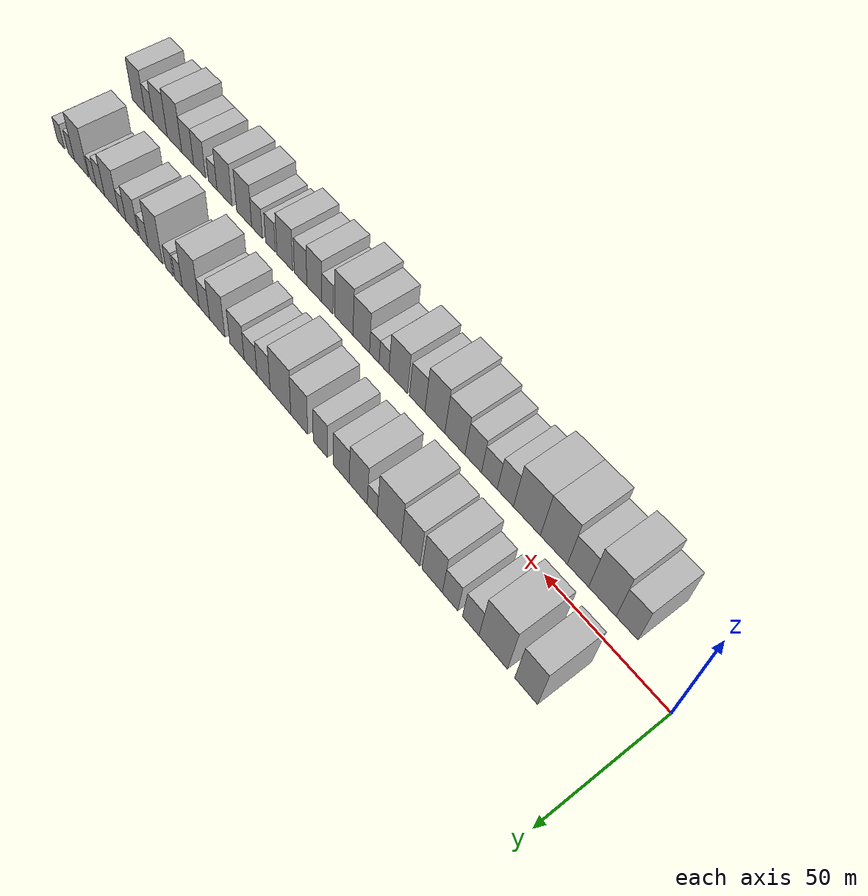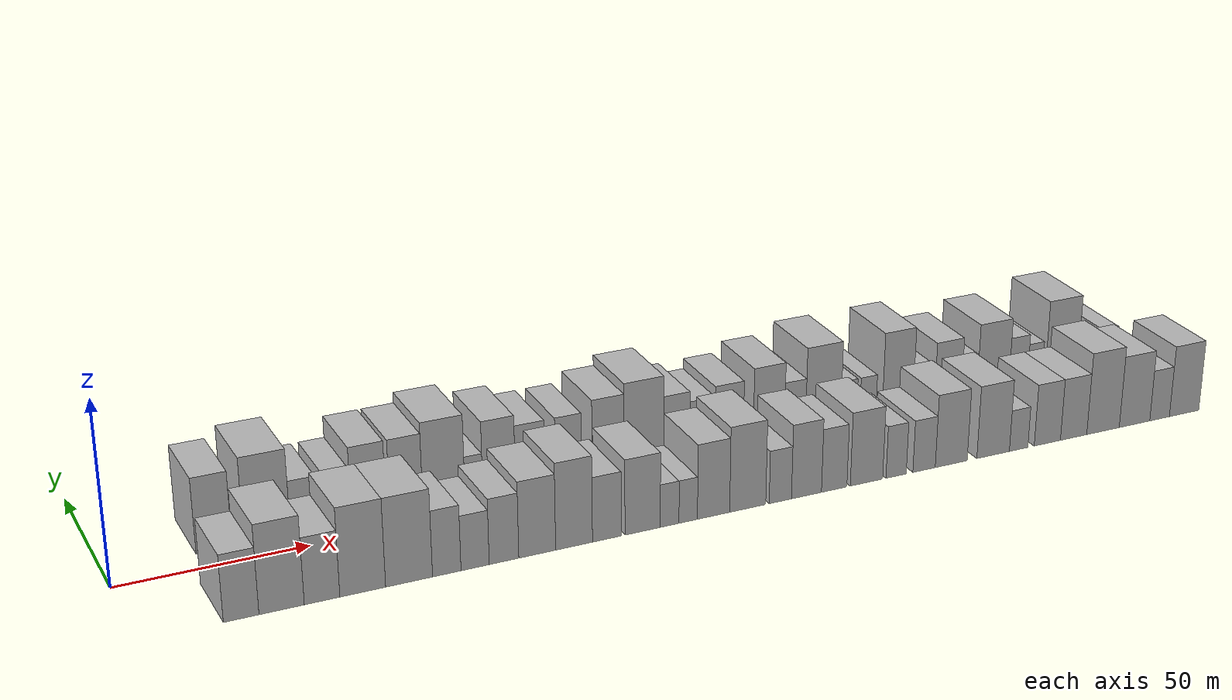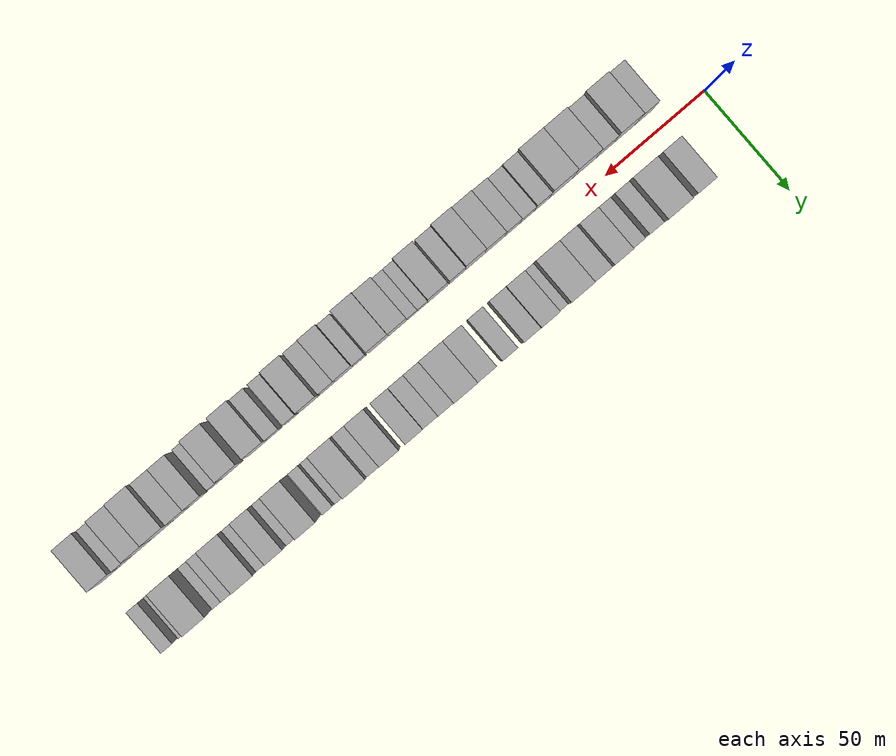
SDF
<sdf version="1.6">
 <world name="default">
  <scene>
   <sky><clouds><speed>12</speed></clouds></sky>
   <ambient>0.4 0.4 0.4 1</ambient>
   <background>0.7 0.7 0.7 1</background>
   <shadows>1</shadows>
  </scene>
  <gravity>0 0 -9.8066</gravity>
  <magnetic_field>6e-06 2.3e-05 -4.2e-05</magnetic_field>
  <physics default="0" name="default_physics" type="ode">
   <ode>
    <solver>
     <type>quick</type>
     <iters>10</iters>
     <sor>1.0</sor>
     <use_dynamic_moi_rescaling>0</use_dynamic_moi_rescaling>
    </solver>
    <constraints>
     <cfm>0</cfm>
     <erp>0.2</erp>
     <contact_max_correcting_vel>100</contact_max_correcting_vel>
     <contact_surface_layer>0.001</contact_surface_layer>
    </constraints>
   </ode>
   <max_step_size>0.004</max_step_size>
   <real_time_factor>1</real_time_factor>
   <real_time_update_rate>250</real_time_update_rate>
  </physics>
  <light name="sun" type="directional">
   <pose>0 0 10 0 0 0</pose>
   <diffuse>0.8 0.8 0.8 1</diffuse>
   <specular>0.2 0.2 0.2 1</specular>
   <attenuation>
    <range>1000</range>
    <constant>0.9</constant>
    <linear>0.01</linear>
    <quadratic>0.001</quadratic>
   </attenuation>
   <direction>-0.5 0.1 -0.9</direction>
  </light>
  <model name="building_1">
   <static>1</static>
   <pose>27.5852 17.5000 0 0.000000 0.000000 1.570796</pose>
   <link name="link">
    <pose>0 0 10.50 0 0 0</pose>
    <collision name="collision"><geometry><box><size>20.0000 9.1705 21.0000</size></box></geometry></collision>
    <visual name="visual">
     <cast_shadows>0</cast_shadows>
     <geometry><box><size>20.0000 9.1705 21.0000</size></box></geometry>
     <material>
      <script>
       <uri>model://HANNAS_wall/materials/scripts</uri>
       <uri>model://HANNAS_wall/materials/textures</uri>
       <name>vrc/HANNAS_wall</name>
      </script>
     </material>
    </visual>
   </link>
  </model>
  <model name="building_2">
   <static>1</static>
   <pose>41.1646 17.5000 0 0.000000 0.000000 1.570796</pose>
   <link name="link">
    <pose>0 0 12.00 0 0 0</pose>
    <collision name="collision"><geometry><box><size>20.0000 11.9883 24.0000</size></box></geometry></collision>
    <visual name="visual">
     <cast_shadows>0</cast_shadows>
     <geometry><box><size>20.0000 11.9883 24.0000</size></box></geometry>
     <material>
      <script>
       <uri>model://HANNAS_wall/materials/scripts</uri>
       <uri>model://HANNAS_wall/materials/textures</uri>
       <name>vrc/HANNAS_wall</name>
      </script>
     </material>
    </visual>
   </link>
  </model>
  <model name="building_3">
   <static>1</static>
   <pose>50.7169 17.5000 0 0.000000 0.000000 1.570796</pose>
   <link name="link">
    <pose>0 0 7.50 0 0 0</pose>
    <collision name="collision"><geometry><box><size>20.0000 7.1163 15.0000</size></box></geometry></collision>
    <visual name="visual">
     <cast_shadows>0</cast_shadows>
     <geometry><box><size>20.0000 7.1163 15.0000</size></box></geometry>
     <material>
      <script>
       <uri>model://HANNAS_wall/materials/scripts</uri>
       <uri>model://HANNAS_wall/materials/textures</uri>
       <name>vrc/HANNAS_wall</name>
      </script>
     </material>
    </visual>
   </link>
  </model>
  <model name="building_4">
   <static>1</static>
   <pose>59.7222 17.5000 0 0.000000 0.000000 1.570796</pose>
   <link name="link">
    <pose>0 0 7.50 0 0 0</pose>
    <collision name="collision"><geometry><box><size>20.0000 6.8942 15.0000</size></box></geometry></collision>
    <visual name="visual">
     <cast_shadows>0</cast_shadows>
     <geometry><box><size>20.0000 6.8942 15.0000</size></box></geometry>
     <material>
      <script>
       <uri>model://HANNAS_wall/materials/scripts</uri>
       <uri>model://HANNAS_wall/materials/textures</uri>
       <name>vrc/HANNAS_wall</name>
      </script>
     </material>
    </visual>
   </link>
  </model>
  <model name="building_5">
   <static>1</static>
   <pose>67.7992 17.5000 0 0.000000 0.000000 1.570796</pose>
   <link name="link">
    <pose>0 0 10.50 0 0 0</pose>
    <collision name="collision"><geometry><box><size>20.0000 9.2598 21.0000</size></box></geometry></collision>
    <visual name="visual">
     <cast_shadows>0</cast_shadows>
     <geometry><box><size>20.0000 9.2598 21.0000</size></box></geometry>
     <material>
      <script>
       <uri>model://HANNAS_wall/materials/scripts</uri>
       <uri>model://HANNAS_wall/materials/textures</uri>
       <name>vrc/HANNAS_wall</name>
      </script>
     </material>
    </visual>
   </link>
  </model>
  <model name="building_6">
   <static>1</static>
   <pose>77.8430 17.5000 0 0.000000 0.000000 1.570796</pose>
   <link name="link">
    <pose>0 0 10.50 0 0 0</pose>
    <collision name="collision"><geometry><box><size>20.0000 8.8278 21.0000</size></box></geometry></collision>
    <visual name="visual">
     <cast_shadows>0</cast_shadows>
     <geometry><box><size>20.0000 8.8278 21.0000</size></box></geometry>
     <material>
      <script>
       <uri>model://HANNAS_wall/materials/scripts</uri>
       <uri>model://HANNAS_wall/materials/textures</uri>
       <name>vrc/HANNAS_wall</name>
      </script>
     </material>
    </visual>
   </link>
  </model>
  <model name="building_7">
   <static>1</static>
   <pose>87.9977 17.5000 0 0.000000 0.000000 1.570796</pose>
   <link name="link">
    <pose>0 0 12.00 0 0 0</pose>
    <collision name="collision"><geometry><box><size>20.0000 11.4816 24.0000</size></box></geometry></collision>
    <visual name="visual">
     <cast_shadows>0</cast_shadows>
     <geometry><box><size>20.0000 11.4816 24.0000</size></box></geometry>
     <material>
      <script>
       <uri>model://HANNAS_wall/materials/scripts</uri>
       <uri>model://HANNAS_wall/materials/textures</uri>
       <name>vrc/HANNAS_wall</name>
      </script>
     </material>
    </visual>
   </link>
  </model>
  <model name="building_8">
   <static>1</static>
   <pose>96.1856 17.5000 0 0.000000 0.000000 1.570796</pose>
   <link name="link">
    <pose>0 0 6.00 0 0 0</pose>
    <collision name="collision"><geometry><box><size>20.0000 4.8943 12.0000</size></box></geometry></collision>
    <visual name="visual">
     <cast_shadows>0</cast_shadows>
     <geometry><box><size>20.0000 4.8943 12.0000</size></box></geometry>
     <material>
      <script>
       <uri>model://HANNAS_wall/materials/scripts</uri>
       <uri>model://HANNAS_wall/materials/textures</uri>
       <name>vrc/HANNAS_wall</name>
      </script>
     </material>
    </visual>
   </link>
  </model>
  <model name="building_9">
   <static>1</static>
   <pose>103.1687 17.5000 0 0.000000 0.000000 1.570796</pose>
   <link name="link">
    <pose>0 0 10.50 0 0 0</pose>
    <collision name="collision"><geometry><box><size>20.0000 9.0717 21.0000</size></box></geometry></collision>
    <visual name="visual">
     <cast_shadows>0</cast_shadows>
     <geometry><box><size>20.0000 9.0717 21.0000</size></box></geometry>
     <material>
      <script>
       <uri>model://HANNAS_wall/materials/scripts</uri>
       <uri>model://HANNAS_wall/materials/textures</uri>
       <name>vrc/HANNAS_wall</name>
      </script>
     </material>
    </visual>
   </link>
  </model>
  <model name="building_10">
   <static>1</static>
   <pose>111.8234 17.5000 0 0.000000 0.000000 1.570796</pose>
   <link name="link">
    <pose>0 0 9.00 0 0 0</pose>
    <collision name="collision"><geometry><box><size>20.0000 8.2377 18.0000</size></box></geometry></collision>
    <visual name="visual">
     <cast_shadows>0</cast_shadows>
     <geometry><box><size>20.0000 8.2377 18.0000</size></box></geometry>
     <material>
      <script>
       <uri>model://HANNAS_wall/materials/scripts</uri>
       <uri>model://HANNAS_wall/materials/textures</uri>
       <name>vrc/HANNAS_wall</name>
      </script>
     </material>
    </visual>
   </link>
  </model>
  <model name="building_11">
   <static>1</static>
   <pose>122.6822 17.5000 0 0.000000 0.000000 1.570796</pose>
   <link name="link">
    <pose>0 0 9.00 0 0 0</pose>
    <collision name="collision"><geometry><box><size>20.0000 7.4799 18.0000</size></box></geometry></collision>
    <visual name="visual">
     <cast_shadows>0</cast_shadows>
     <geometry><box><size>20.0000 7.4799 18.0000</size></box></geometry>
     <material>
      <script>
       <uri>model://HANNAS_wall/materials/scripts</uri>
       <uri>model://HANNAS_wall/materials/textures</uri>
       <name>vrc/HANNAS_wall</name>
      </script>
     </material>
    </visual>
   </link>
  </model>
  <model name="building_12">
   <static>1</static>
   <pose>134.0136 17.5000 0 0.000000 0.000000 1.570796</pose>
   <link name="link">
    <pose>0 0 10.50 0 0 0</pose>
    <collision name="collision"><geometry><box><size>20.0000 9.1830 21.0000</size></box></geometry></collision>
    <visual name="visual">
     <cast_shadows>0</cast_shadows>
     <geometry><box><size>20.0000 9.1830 21.0000</size></box></geometry>
     <material>
      <script>
       <uri>model://HANNAS_wall/materials/scripts</uri>
       <uri>model://HANNAS_wall/materials/textures</uri>
       <name>vrc/HANNAS_wall</name>
      </script>
     </material>
    </visual>
   </link>
  </model>
  <model name="building_13">
   <static>1</static>
   <pose>144.3929 17.5000 0 0.000000 0.000000 1.570796</pose>
   <link name="link">
    <pose>0 0 12.00 0 0 0</pose>
    <collision name="collision"><geometry><box><size>20.0000 11.5757 24.0000</size></box></geometry></collision>
    <visual name="visual">
     <cast_shadows>0</cast_shadows>
     <geometry><box><size>20.0000 11.5757 24.0000</size></box></geometry>
     <material>
      <script>
       <uri>model://HANNAS_wall/materials/scripts</uri>
       <uri>model://HANNAS_wall/materials/textures</uri>
       <name>vrc/HANNAS_wall</name>
      </script>
     </material>
    </visual>
   </link>
  </model>
  <model name="building_14">
   <static>1</static>
   <pose>153.9716 17.5000 0 0.000000 0.000000 1.570796</pose>
   <link name="link">
    <pose>0 0 9.00 0 0 0</pose>
    <collision name="collision"><geometry><box><size>20.0000 7.5817 18.0000</size></box></geometry></collision>
    <visual name="visual">
     <cast_shadows>0</cast_shadows>
     <geometry><box><size>20.0000 7.5817 18.0000</size></box></geometry>
     <material>
      <script>
       <uri>model://HANNAS_wall/materials/scripts</uri>
       <uri>model://HANNAS_wall/materials/textures</uri>
       <name>vrc/HANNAS_wall</name>
      </script>
     </material>
    </visual>
   </link>
  </model>
  <model name="building_15">
   <static>1</static>
   <pose>161.5057 17.5000 0 0.000000 0.000000 1.570796</pose>
   <link name="link">
    <pose>0 0 7.50 0 0 0</pose>
    <collision name="collision"><geometry><box><size>20.0000 7.4865 15.0000</size></box></geometry></collision>
    <visual name="visual">
     <cast_shadows>0</cast_shadows>
     <geometry><box><size>20.0000 7.4865 15.0000</size></box></geometry>
     <material>
      <script>
       <uri>model://HANNAS_wall/materials/scripts</uri>
       <uri>model://HANNAS_wall/materials/textures</uri>
       <name>vrc/HANNAS_wall</name>
      </script>
     </material>
    </visual>
   </link>
  </model>
  <model name="building_16">
   <static>1</static>
   <pose>169.5354 17.5000 0 0.000000 0.000000 1.570796</pose>
   <link name="link">
    <pose>0 0 9.00 0 0 0</pose>
    <collision name="collision"><geometry><box><size>20.0000 8.5730 18.0000</size></box></geometry></collision>
    <visual name="visual">
     <cast_shadows>0</cast_shadows>
     <geometry><box><size>20.0000 8.5730 18.0000</size></box></geometry>
     <material>
      <script>
       <uri>model://HANNAS_wall/materials/scripts</uri>
       <uri>model://HANNAS_wall/materials/textures</uri>
       <name>vrc/HANNAS_wall</name>
      </script>
     </material>
    </visual>
   </link>
  </model>
  <model name="building_17">
   <static>1</static>
   <pose>181.5526 17.5000 0 0.000000 0.000000 1.570796</pose>
   <link name="link">
    <pose>0 0 10.50 0 0 0</pose>
    <collision name="collision"><geometry><box><size>20.0000 9.4613 21.0000</size></box></geometry></collision>
    <visual name="visual">
     <cast_shadows>0</cast_shadows>
     <geometry><box><size>20.0000 9.4613 21.0000</size></box></geometry>
     <material>
      <script>
       <uri>model://HANNAS_wall/materials/scripts</uri>
       <uri>model://HANNAS_wall/materials/textures</uri>
       <name>vrc/HANNAS_wall</name>
      </script>
     </material>
    </visual>
   </link>
  </model>
  <model name="building_18">
   <static>1</static>
   <pose>189.5283 17.5000 0 0.000000 0.000000 1.570796</pose>
   <link name="link">
    <pose>0 0 7.50 0 0 0</pose>
    <collision name="collision"><geometry><box><size>20.0000 6.4901 15.0000</size></box></geometry></collision>
    <visual name="visual">
     <cast_shadows>0</cast_shadows>
     <geometry><box><size>20.0000 6.4901 15.0000</size></box></geometry>
     <material>
      <script>
       <uri>model://HANNAS_wall/materials/scripts</uri>
       <uri>model://HANNAS_wall/materials/textures</uri>
       <name>vrc/HANNAS_wall</name>
      </script>
     </material>
    </visual>
   </link>
  </model>
  <model name="building_19">
   <static>1</static>
   <pose>198.2223 17.5000 0 0.000000 0.000000 1.570796</pose>
   <link name="link">
    <pose>0 0 12.00 0 0 0</pose>
    <collision name="collision"><geometry><box><size>20.0000 10.8981 24.0000</size></box></geometry></collision>
    <visual name="visual">
     <cast_shadows>0</cast_shadows>
     <geometry><box><size>20.0000 10.8981 24.0000</size></box></geometry>
     <material>
      <script>
       <uri>model://HANNAS_wall/materials/scripts</uri>
       <uri>model://HANNAS_wall/materials/textures</uri>
       <name>vrc/HANNAS_wall</name>
      </script>
     </material>
    </visual>
   </link>
  </model>
  <model name="building_20">
   <static>1</static>
   <pose>206.1692 17.5000 0 0.000000 0.000000 1.570796</pose>
   <link name="link">
    <pose>0 0 6.00 0 0 0</pose>
    <collision name="collision"><geometry><box><size>20.0000 4.9956 12.0000</size></box></geometry></collision>
    <visual name="visual">
     <cast_shadows>0</cast_shadows>
     <geometry><box><size>20.0000 4.9956 12.0000</size></box></geometry>
     <material>
      <script>
       <uri>model://HANNAS_wall/materials/scripts</uri>
       <uri>model://HANNAS_wall/materials/textures</uri>
       <name>vrc/HANNAS_wall</name>
      </script>
     </material>
    </visual>
   </link>
  </model>
  <model name="building_21">
   <static>1</static>
   <pose>212.2109 17.5000 0 0.000000 0.000000 1.570796</pose>
   <link name="link">
    <pose>0 0 6.00 0 0 0</pose>
    <collision name="collision"><geometry><box><size>20.0000 5.0878 12.0000</size></box></geometry></collision>
    <visual name="visual">
     <cast_shadows>0</cast_shadows>
     <geometry><box><size>20.0000 5.0878 12.0000</size></box></geometry>
     <material>
      <script>
       <uri>model://HANNAS_wall/materials/scripts</uri>
       <uri>model://HANNAS_wall/materials/textures</uri>
       <name>vrc/HANNAS_wall</name>
      </script>
     </material>
    </visual>
   </link>
  </model>
  <model name="building_22">
   <static>1</static>
   <pose>221.6226 17.5000 0 0.000000 0.000000 1.570796</pose>
   <link name="link">
    <pose>0 0 12.00 0 0 0</pose>
    <collision name="collision"><geometry><box><size>20.0000 9.7358 24.0000</size></box></geometry></collision>
    <visual name="visual">
     <cast_shadows>0</cast_shadows>
     <geometry><box><size>20.0000 9.7358 24.0000</size></box></geometry>
     <material>
      <script>
       <uri>model://HANNAS_wall/materials/scripts</uri>
       <uri>model://HANNAS_wall/materials/textures</uri>
       <name>vrc/HANNAS_wall</name>
      </script>
     </material>
    </visual>
   </link>
  </model>
  <model name="building_23">
   <static>1</static>
   <pose>229.4698 17.5000 0 0.000000 0.000000 1.570796</pose>
   <link name="link">
    <pose>0 0 6.00 0 0 0</pose>
    <collision name="collision"><geometry><box><size>20.0000 5.9585 12.0000</size></box></geometry></collision>
    <visual name="visual">
     <cast_shadows>0</cast_shadows>
     <geometry><box><size>20.0000 5.9585 12.0000</size></box></geometry>
     <material>
      <script>
       <uri>model://HANNAS_wall/materials/scripts</uri>
       <uri>model://HANNAS_wall/materials/textures</uri>
       <name>vrc/HANNAS_wall</name>
      </script>
     </material>
    </visual>
   </link>
  </model>
  <model name="building_24">
   <static>1</static>
   <pose>237.7962 17.5000 0 0.000000 0.000000 1.570796</pose>
   <link name="link">
    <pose>0 0 9.00 0 0 0</pose>
    <collision name="collision"><geometry><box><size>20.0000 8.6944 18.0000</size></box></geometry></collision>
    <visual name="visual">
     <cast_shadows>0</cast_shadows>
     <geometry><box><size>20.0000 8.6944 18.0000</size></box></geometry>
     <material>
      <script>
       <uri>model://HANNAS_wall/materials/scripts</uri>
       <uri>model://HANNAS_wall/materials/textures</uri>
       <name>vrc/HANNAS_wall</name>
      </script>
     </material>
    </visual>
   </link>
  </model>
  <model name="building_25">
   <static>1</static>
   <pose>244.6974 17.5000 0 0.000000 0.000000 1.570796</pose>
   <link name="link">
    <pose>0 0 6.00 0 0 0</pose>
    <collision name="collision"><geometry><box><size>20.0000 5.1079 12.0000</size></box></geometry></collision>
    <visual name="visual">
     <cast_shadows>0</cast_shadows>
     <geometry><box><size>20.0000 5.1079 12.0000</size></box></geometry>
     <material>
      <script>
       <uri>model://HANNAS_wall/materials/scripts</uri>
       <uri>model://HANNAS_wall/materials/textures</uri>
       <name>vrc/HANNAS_wall</name>
      </script>
     </material>
    </visual>
   </link>
  </model>
  <model name="building_26">
   <static>1</static>
   <pose>252.4912 17.5000 0 0.000000 0.000000 1.570796</pose>
   <link name="link">
    <pose>0 0 10.50 0 0 0</pose>
    <collision name="collision"><geometry><box><size>20.0000 10.4798 21.0000</size></box></geometry></collision>
    <visual name="visual">
     <cast_shadows>0</cast_shadows>
     <geometry><box><size>20.0000 10.4798 21.0000</size></box></geometry>
     <material>
      <script>
       <uri>model://HANNAS_wall/materials/scripts</uri>
       <uri>model://HANNAS_wall/materials/textures</uri>
       <name>vrc/HANNAS_wall</name>
      </script>
     </material>
    </visual>
   </link>
  </model>
  <model name="building_27">
   <static>1</static>
   <pose>260.8215 17.5000 0 0.000000 0.000000 1.570796</pose>
   <link name="link">
    <pose>0 0 7.50 0 0 0</pose>
    <collision name="collision"><geometry><box><size>20.0000 6.1807 15.0000</size></box></geometry></collision>
    <visual name="visual">
     <cast_shadows>0</cast_shadows>
     <geometry><box><size>20.0000 6.1807 15.0000</size></box></geometry>
     <material>
      <script>
       <uri>model://HANNAS_wall/materials/scripts</uri>
       <uri>model://HANNAS_wall/materials/textures</uri>
       <name>vrc/HANNAS_wall</name>
      </script>
     </material>
    </visual>
   </link>
  </model>
  <model name="building_28">
   <static>1</static>
   <pose>266.3518 17.5000 0 0.000000 0.000000 1.570796</pose>
   <link name="link">
    <pose>0 0 6.00 0 0 0</pose>
    <collision name="collision"><geometry><box><size>20.0000 4.8800 12.0000</size></box></geometry></collision>
    <visual name="visual">
     <cast_shadows>0</cast_shadows>
     <geometry><box><size>20.0000 4.8800 12.0000</size></box></geometry>
     <material>
      <script>
       <uri>model://HANNAS_wall/materials/scripts</uri>
       <uri>model://HANNAS_wall/materials/textures</uri>
       <name>vrc/HANNAS_wall</name>
      </script>
     </material>
    </visual>
   </link>
  </model>
  <model name="building_29">
   <static>1</static>
   <pose>275.2302 17.5000 0 0.000000 0.000000 1.570796</pose>
   <link name="link">
    <pose>0 0 12.00 0 0 0</pose>
    <collision name="collision"><geometry><box><size>20.0000 10.8769 24.0000</size></box></geometry></collision>
    <visual name="visual">
     <cast_shadows>0</cast_shadows>
     <geometry><box><size>20.0000 10.8769 24.0000</size></box></geometry>
     <material>
      <script>
       <uri>model://HANNAS_wall/materials/scripts</uri>
       <uri>model://HANNAS_wall/materials/textures</uri>
       <name>vrc/HANNAS_wall</name>
      </script>
     </material>
    </visual>
   </link>
  </model>
  <model name="building_30">
   <static>1</static>
   <pose>283.0954 17.5000 0 0.000000 0.000000 1.570796</pose>
   <link name="link">
    <pose>0 0 6.00 0 0 0</pose>
    <collision name="collision"><geometry><box><size>20.0000 4.8534 12.0000</size></box></geometry></collision>
    <visual name="visual">
     <cast_shadows>0</cast_shadows>
     <geometry><box><size>20.0000 4.8534 12.0000</size></box></geometry>
     <material>
      <script>
       <uri>model://HANNAS_wall/materials/scripts</uri>
       <uri>model://HANNAS_wall/materials/textures</uri>
       <name>vrc/HANNAS_wall</name>
      </script>
     </material>
    </visual>
   </link>
  </model>
  <model name="building_31">
   <static>1</static>
   <pose>291.2903 17.5000 0 0.000000 0.000000 1.570796</pose>
   <link name="link">
    <pose>0 0 6.00 0 0 0</pose>
    <collision name="collision"><geometry><box><size>20.0000 5.5366 12.0000</size></box></geometry></collision>
    <visual name="visual">
     <cast_shadows>0</cast_shadows>
     <geometry><box><size>20.0000 5.5366 12.0000</size></box></geometry>
     <material>
      <script>
       <uri>model://HANNAS_wall/materials/scripts</uri>
       <uri>model://HANNAS_wall/materials/textures</uri>
       <name>vrc/HANNAS_wall</name>
      </script>
     </material>
    </visual>
   </link>
  </model>
  <model name="building_32">
   <static>1</static>
   <pose>24.3116 -17.5000 0 0.000000 0.000000 1.570796</pose>
   <link name="link">
    <pose>0 0 9.00 0 0 0</pose>
    <collision name="collision"><geometry><box><size>20.0000 8.6232 18.0000</size></box></geometry></collision>
    <visual name="visual">
     <cast_shadows>0</cast_shadows>
     <geometry><box><size>20.0000 8.6232 18.0000</size></box></geometry>
     <material>
      <script>
       <uri>model://HANNAS_wall/materials/scripts</uri>
       <uri>model://HANNAS_wall/materials/textures</uri>
       <name>vrc/HANNAS_wall</name>
      </script>
     </material>
    </visual>
   </link>
  </model>
  <model name="building_33">
   <static>1</static>
   <pose>34.1725 -17.5000 0 0.000000 0.000000 1.570796</pose>
   <link name="link">
    <pose>0 0 12.00 0 0 0</pose>
    <collision name="collision"><geometry><box><size>20.0000 11.0985 24.0000</size></box></geometry></collision>
    <visual name="visual">
     <cast_shadows>0</cast_shadows>
     <geometry><box><size>20.0000 11.0985 24.0000</size></box></geometry>
     <material>
      <script>
       <uri>model://HANNAS_wall/materials/scripts</uri>
       <uri>model://HANNAS_wall/materials/textures</uri>
       <name>vrc/HANNAS_wall</name>
      </script>
     </material>
    </visual>
   </link>
  </model>
  <model name="building_34">
   <static>1</static>
   <pose>44.1316 -17.5000 0 0.000000 0.000000 1.570796</pose>
   <link name="link">
    <pose>0 0 9.00 0 0 0</pose>
    <collision name="collision"><geometry><box><size>20.0000 8.8197 18.0000</size></box></geometry></collision>
    <visual name="visual">
     <cast_shadows>0</cast_shadows>
     <geometry><box><size>20.0000 8.8197 18.0000</size></box></geometry>
     <material>
      <script>
       <uri>model://HANNAS_wall/materials/scripts</uri>
       <uri>model://HANNAS_wall/materials/textures</uri>
       <name>vrc/HANNAS_wall</name>
      </script>
     </material>
    </visual>
   </link>
  </model>
  <model name="building_35">
   <static>1</static>
   <pose>54.2930 -17.5000 0 0.000000 0.000000 1.570796</pose>
   <link name="link">
    <pose>0 0 12.00 0 0 0</pose>
    <collision name="collision"><geometry><box><size>20.0000 11.5032 24.0000</size></box></geometry></collision>
    <visual name="visual">
     <cast_shadows>0</cast_shadows>
     <geometry><box><size>20.0000 11.5032 24.0000</size></box></geometry>
     <material>
      <script>
       <uri>model://HANNAS_wall/materials/scripts</uri>
       <uri>model://HANNAS_wall/materials/textures</uri>
       <name>vrc/HANNAS_wall</name>
      </script>
     </material>
    </visual>
   </link>
  </model>
  <model name="building_36">
   <static>1</static>
   <pose>66.0285 -17.5000 0 0.000000 0.000000 1.570796</pose>
   <link name="link">
    <pose>0 0 12.00 0 0 0</pose>
    <collision name="collision"><geometry><box><size>20.0000 11.9679 24.0000</size></box></geometry></collision>
    <visual name="visual">
     <cast_shadows>0</cast_shadows>
     <geometry><box><size>20.0000 11.9679 24.0000</size></box></geometry>
     <material>
      <script>
       <uri>model://HANNAS_wall/materials/scripts</uri>
       <uri>model://HANNAS_wall/materials/textures</uri>
       <name>vrc/HANNAS_wall</name>
      </script>
     </material>
    </visual>
   </link>
  </model>
  <model name="building_37">
   <static>1</static>
   <pose>75.6918 -17.5000 0 0.000000 0.000000 1.570796</pose>
   <link name="link">
    <pose>0 0 9.00 0 0 0</pose>
    <collision name="collision"><geometry><box><size>20.0000 7.3585 18.0000</size></box></geometry></collision>
    <visual name="visual">
     <cast_shadows>0</cast_shadows>
     <geometry><box><size>20.0000 7.3585 18.0000</size></box></geometry>
     <material>
      <script>
       <uri>model://HANNAS_wall/materials/scripts</uri>
       <uri>model://HANNAS_wall/materials/textures</uri>
       <name>vrc/HANNAS_wall</name>
      </script>
     </material>
    </visual>
   </link>
  </model>
  <model name="building_38">
   <static>1</static>
   <pose>83.0471 -17.5000 0 0.000000 0.000000 1.570796</pose>
   <link name="link">
    <pose>0 0 7.50 0 0 0</pose>
    <collision name="collision"><geometry><box><size>20.0000 7.3521 15.0000</size></box></geometry></collision>
    <visual name="visual">
     <cast_shadows>0</cast_shadows>
     <geometry><box><size>20.0000 7.3521 15.0000</size></box></geometry>
     <material>
      <script>
       <uri>model://HANNAS_wall/materials/scripts</uri>
       <uri>model://HANNAS_wall/materials/textures</uri>
       <name>vrc/HANNAS_wall</name>
      </script>
     </material>
    </visual>
   </link>
  </model>
  <model name="building_39">
   <static>1</static>
   <pose>90.6170 -17.5000 0 0.000000 0.000000 1.570796</pose>
   <link name="link">
    <pose>0 0 9.00 0 0 0</pose>
    <collision name="collision"><geometry><box><size>20.0000 7.7878 18.0000</size></box></geometry></collision>
    <visual name="visual">
     <cast_shadows>0</cast_shadows>
     <geometry><box><size>20.0000 7.7878 18.0000</size></box></geometry>
     <material>
      <script>
       <uri>model://HANNAS_wall/materials/scripts</uri>
       <uri>model://HANNAS_wall/materials/textures</uri>
       <name>vrc/HANNAS_wall</name>
      </script>
     </material>
    </visual>
   </link>
  </model>
  <model name="building_40">
   <static>1</static>
   <pose>99.4176 -17.5000 0 0.000000 0.000000 1.570796</pose>
   <link name="link">
    <pose>0 0 10.50 0 0 0</pose>
    <collision name="collision"><geometry><box><size>20.0000 9.8136 21.0000</size></box></geometry></collision>
    <visual name="visual">
     <cast_shadows>0</cast_shadows>
     <geometry><box><size>20.0000 9.8136 21.0000</size></box></geometry>
     <material>
      <script>
       <uri>model://HANNAS_wall/materials/scripts</uri>
       <uri>model://HANNAS_wall/materials/textures</uri>
       <name>vrc/HANNAS_wall</name>
      </script>
     </material>
    </visual>
   </link>
  </model>
  <model name="building_41">
   <static>1</static>
   <pose>109.2819 -17.5000 0 0.000000 0.000000 1.570796</pose>
   <link name="link">
    <pose>0 0 12.00 0 0 0</pose>
    <collision name="collision"><geometry><box><size>20.0000 9.9149 24.0000</size></box></geometry></collision>
    <visual name="visual">
     <cast_shadows>0</cast_shadows>
     <geometry><box><size>20.0000 9.9149 24.0000</size></box></geometry>
     <material>
      <script>
       <uri>model://HANNAS_wall/materials/scripts</uri>
       <uri>model://HANNAS_wall/materials/textures</uri>
       <name>vrc/HANNAS_wall</name>
      </script>
     </material>
    </visual>
   </link>
  </model>
  <model name="building_42">
   <static>1</static>
   <pose>118.1715 -17.5000 0 0.000000 0.000000 1.570796</pose>
   <link name="link">
    <pose>0 0 9.00 0 0 0</pose>
    <collision name="collision"><geometry><box><size>20.0000 7.8644 18.0000</size></box></geometry></collision>
    <visual name="visual">
     <cast_shadows>0</cast_shadows>
     <geometry><box><size>20.0000 7.8644 18.0000</size></box></geometry>
     <material>
      <script>
       <uri>model://HANNAS_wall/materials/scripts</uri>
       <uri>model://HANNAS_wall/materials/textures</uri>
       <name>vrc/HANNAS_wall</name>
      </script>
     </material>
    </visual>
   </link>
  </model>
  <model name="building_43">
   <static>1</static>
   <pose>127.9810 -17.5000 0 0.000000 0.000000 1.570796</pose>
   <link name="link">
    <pose>0 0 10.50 0 0 0</pose>
    <collision name="collision"><geometry><box><size>20.0000 9.7544 21.0000</size></box></geometry></collision>
    <visual name="visual">
     <cast_shadows>0</cast_shadows>
     <geometry><box><size>20.0000 9.7544 21.0000</size></box></geometry>
     <material>
      <script>
       <uri>model://HANNAS_wall/materials/scripts</uri>
       <uri>model://HANNAS_wall/materials/textures</uri>
       <name>vrc/HANNAS_wall</name>
      </script>
     </material>
    </visual>
   </link>
  </model>
  <model name="building_44">
   <static>1</static>
   <pose>135.4495 -17.5000 0 0.000000 0.000000 1.570796</pose>
   <link name="link">
    <pose>0 0 6.00 0 0 0</pose>
    <collision name="collision"><geometry><box><size>20.0000 5.1826 12.0000</size></box></geometry></collision>
    <visual name="visual">
     <cast_shadows>0</cast_shadows>
     <geometry><box><size>20.0000 5.1826 12.0000</size></box></geometry>
     <material>
      <script>
       <uri>model://HANNAS_wall/materials/scripts</uri>
       <uri>model://HANNAS_wall/materials/textures</uri>
       <name>vrc/HANNAS_wall</name>
      </script>
     </material>
    </visual>
   </link>
  </model>
  <model name="building_45">
   <static>1</static>
   <pose>140.6268 -17.5000 0 0.000000 0.000000 1.570796</pose>
   <link name="link">
    <pose>0 0 6.00 0 0 0</pose>
    <collision name="collision"><geometry><box><size>20.0000 5.1721 12.0000</size></box></geometry></collision>
    <visual name="visual">
     <cast_shadows>0</cast_shadows>
     <geometry><box><size>20.0000 5.1721 12.0000</size></box></geometry>
     <material>
      <script>
       <uri>model://HANNAS_wall/materials/scripts</uri>
       <uri>model://HANNAS_wall/materials/textures</uri>
       <name>vrc/HANNAS_wall</name>
      </script>
     </material>
    </visual>
   </link>
  </model>
  <model name="building_46">
   <static>1</static>
   <pose>147.7668 -17.5000 0 0.000000 0.000000 1.570796</pose>
   <link name="link">
    <pose>0 0 10.50 0 0 0</pose>
    <collision name="collision"><geometry><box><size>20.0000 9.1079 21.0000</size></box></geometry></collision>
    <visual name="visual">
     <cast_shadows>0</cast_shadows>
     <geometry><box><size>20.0000 9.1079 21.0000</size></box></geometry>
     <material>
      <script>
       <uri>model://HANNAS_wall/materials/scripts</uri>
       <uri>model://HANNAS_wall/materials/textures</uri>
       <name>vrc/HANNAS_wall</name>
      </script>
     </material>
    </visual>
   </link>
  </model>
  <model name="building_47">
   <static>1</static>
   <pose>157.4721 -17.5000 0 0.000000 0.000000 1.570796</pose>
   <link name="link">
    <pose>0 0 12.00 0 0 0</pose>
    <collision name="collision"><geometry><box><size>20.0000 10.3028 24.0000</size></box></geometry></collision>
    <visual name="visual">
     <cast_shadows>0</cast_shadows>
     <geometry><box><size>20.0000 10.3028 24.0000</size></box></geometry>
     <material>
      <script>
       <uri>model://HANNAS_wall/materials/scripts</uri>
       <uri>model://HANNAS_wall/materials/textures</uri>
       <name>vrc/HANNAS_wall</name>
      </script>
     </material>
    </visual>
   </link>
  </model>
  <model name="building_48">
   <static>1</static>
   <pose>166.8417 -17.5000 0 0.000000 0.000000 1.570796</pose>
   <link name="link">
    <pose>0 0 7.50 0 0 0</pose>
    <collision name="collision"><geometry><box><size>20.0000 6.4364 15.0000</size></box></geometry></collision>
    <visual name="visual">
     <cast_shadows>0</cast_shadows>
     <geometry><box><size>20.0000 6.4364 15.0000</size></box></geometry>
     <material>
      <script>
       <uri>model://HANNAS_wall/materials/scripts</uri>
       <uri>model://HANNAS_wall/materials/textures</uri>
       <name>vrc/HANNAS_wall</name>
      </script>
     </material>
    </visual>
   </link>
  </model>
  <model name="building_49">
   <static>1</static>
   <pose>174.4394 -17.5000 0 0.000000 0.000000 1.570796</pose>
   <link name="link">
    <pose>0 0 10.50 0 0 0</pose>
    <collision name="collision"><geometry><box><size>20.0000 8.7588 21.0000</size></box></geometry></collision>
    <visual name="visual">
     <cast_shadows>0</cast_shadows>
     <geometry><box><size>20.0000 8.7588 21.0000</size></box></geometry>
     <material>
      <script>
       <uri>model://HANNAS_wall/materials/scripts</uri>
       <uri>model://HANNAS_wall/materials/textures</uri>
       <name>vrc/HANNAS_wall</name>
      </script>
     </material>
    </visual>
   </link>
  </model>
  <model name="building_50">
   <static>1</static>
   <pose>182.5665 -17.5000 0 0.000000 0.000000 1.570796</pose>
   <link name="link">
    <pose>0 0 9.00 0 0 0</pose>
    <collision name="collision"><geometry><box><size>20.0000 7.4955 18.0000</size></box></geometry></collision>
    <visual name="visual">
     <cast_shadows>0</cast_shadows>
     <geometry><box><size>20.0000 7.4955 18.0000</size></box></geometry>
     <material>
      <script>
       <uri>model://HANNAS_wall/materials/scripts</uri>
       <uri>model://HANNAS_wall/materials/textures</uri>
       <name>vrc/HANNAS_wall</name>
      </script>
     </material>
    </visual>
   </link>
  </model>
  <model name="building_51">
   <static>1</static>
   <pose>192.1387 -17.5000 0 0.000000 0.000000 1.570796</pose>
   <link name="link">
    <pose>0 0 10.50 0 0 0</pose>
    <collision name="collision"><geometry><box><size>20.0000 9.6490 21.0000</size></box></geometry></collision>
    <visual name="visual">
     <cast_shadows>0</cast_shadows>
     <geometry><box><size>20.0000 9.6490 21.0000</size></box></geometry>
     <material>
      <script>
       <uri>model://HANNAS_wall/materials/scripts</uri>
       <uri>model://HANNAS_wall/materials/textures</uri>
       <name>vrc/HANNAS_wall</name>
      </script>
     </material>
    </visual>
   </link>
  </model>
  <model name="building_52">
   <static>1</static>
   <pose>201.0182 -17.5000 0 0.000000 0.000000 1.570796</pose>
   <link name="link">
    <pose>0 0 7.50 0 0 0</pose>
    <collision name="collision"><geometry><box><size>20.0000 6.1100 15.0000</size></box></geometry></collision>
    <visual name="visual">
     <cast_shadows>0</cast_shadows>
     <geometry><box><size>20.0000 6.1100 15.0000</size></box></geometry>
     <material>
      <script>
       <uri>model://HANNAS_wall/materials/scripts</uri>
       <uri>model://HANNAS_wall/materials/textures</uri>
       <name>vrc/HANNAS_wall</name>
      </script>
     </material>
    </visual>
   </link>
  </model>
  <model name="building_53">
   <static>1</static>
   <pose>209.4812 -17.5000 0 0.000000 0.000000 1.570796</pose>
   <link name="link">
    <pose>0 0 7.50 0 0 0</pose>
    <collision name="collision"><geometry><box><size>20.0000 6.8158 15.0000</size></box></geometry></collision>
    <visual name="visual">
     <cast_shadows>0</cast_shadows>
     <geometry><box><size>20.0000 6.8158 15.0000</size></box></geometry>
     <material>
      <script>
       <uri>model://HANNAS_wall/materials/scripts</uri>
       <uri>model://HANNAS_wall/materials/textures</uri>
       <name>vrc/HANNAS_wall</name>
      </script>
     </material>
    </visual>
   </link>
  </model>
  <model name="building_54">
   <static>1</static>
   <pose>217.7902 -17.5000 0 0.000000 0.000000 1.570796</pose>
   <link name="link">
    <pose>0 0 10.50 0 0 0</pose>
    <collision name="collision"><geometry><box><size>20.0000 9.8024 21.0000</size></box></geometry></collision>
    <visual name="visual">
     <cast_shadows>0</cast_shadows>
     <geometry><box><size>20.0000 9.8024 21.0000</size></box></geometry>
     <material>
      <script>
       <uri>model://HANNAS_wall/materials/scripts</uri>
       <uri>model://HANNAS_wall/materials/textures</uri>
       <name>vrc/HANNAS_wall</name>
      </script>
     </material>
    </visual>
   </link>
  </model>
  <model name="building_55">
   <static>1</static>
   <pose>230.7662 -17.5000 0 0.000000 0.000000 1.570796</pose>
   <link name="link">
    <pose>0 0 10.50 0 0 0</pose>
    <collision name="collision"><geometry><box><size>20.0000 10.1496 21.0000</size></box></geometry></collision>
    <visual name="visual">
     <cast_shadows>0</cast_shadows>
     <geometry><box><size>20.0000 10.1496 21.0000</size></box></geometry>
     <material>
      <script>
       <uri>model://HANNAS_wall/materials/scripts</uri>
       <uri>model://HANNAS_wall/materials/textures</uri>
       <name>vrc/HANNAS_wall</name>
      </script>
     </material>
    </visual>
   </link>
  </model>
  <model name="building_56">
   <static>1</static>
   <pose>238.7526 -17.5000 0 0.000000 0.000000 1.570796</pose>
   <link name="link">
    <pose>0 0 6.00 0 0 0</pose>
    <collision name="collision"><geometry><box><size>20.0000 5.8232 12.0000</size></box></geometry></collision>
    <visual name="visual">
     <cast_shadows>0</cast_shadows>
     <geometry><box><size>20.0000 5.8232 12.0000</size></box></geometry>
     <material>
      <script>
       <uri>model://HANNAS_wall/materials/scripts</uri>
       <uri>model://HANNAS_wall/materials/textures</uri>
       <name>vrc/HANNAS_wall</name>
      </script>
     </material>
    </visual>
   </link>
  </model>
  <model name="building_57">
   <static>1</static>
   <pose>247.8393 -17.5000 0 0.000000 0.000000 1.570796</pose>
   <link name="link">
    <pose>0 0 9.00 0 0 0</pose>
    <collision name="collision"><geometry><box><size>20.0000 8.3503 18.0000</size></box></geometry></collision>
    <visual name="visual">
     <cast_shadows>0</cast_shadows>
     <geometry><box><size>20.0000 8.3503 18.0000</size></box></geometry>
     <material>
      <script>
       <uri>model://HANNAS_wall/materials/scripts</uri>
       <uri>model://HANNAS_wall/materials/textures</uri>
       <name>vrc/HANNAS_wall</name>
      </script>
     </material>
    </visual>
   </link>
  </model>
  <model name="building_58">
   <static>1</static>
   <pose>256.2357 -17.5000 0 0.000000 0.000000 1.570796</pose>
   <link name="link">
    <pose>0 0 9.00 0 0 0</pose>
    <collision name="collision"><geometry><box><size>20.0000 8.4425 18.0000</size></box></geometry></collision>
    <visual name="visual">
     <cast_shadows>0</cast_shadows>
     <geometry><box><size>20.0000 8.4425 18.0000</size></box></geometry>
     <material>
      <script>
       <uri>model://HANNAS_wall/materials/scripts</uri>
       <uri>model://HANNAS_wall/materials/textures</uri>
       <name>vrc/HANNAS_wall</name>
      </script>
     </material>
    </visual>
   </link>
  </model>
  <model name="building_59">
   <static>1</static>
   <pose>265.7404 -17.5000 0 0.000000 0.000000 1.570796</pose>
   <link name="link">
    <pose>0 0 12.00 0 0 0</pose>
    <collision name="collision"><geometry><box><size>20.0000 10.5669 24.0000</size></box></geometry></collision>
    <visual name="visual">
     <cast_shadows>0</cast_shadows>
     <geometry><box><size>20.0000 10.5669 24.0000</size></box></geometry>
     <material>
      <script>
       <uri>model://HANNAS_wall/materials/scripts</uri>
       <uri>model://HANNAS_wall/materials/textures</uri>
       <name>vrc/HANNAS_wall</name>
      </script>
     </material>
    </visual>
   </link>
  </model>
  <model name="building_60">
   <static>1</static>
   <pose>276.0287 -17.5000 0 0.000000 0.000000 1.570796</pose>
   <link name="link">
    <pose>0 0 10.50 0 0 0</pose>
    <collision name="collision"><geometry><box><size>20.0000 10.0098 21.0000</size></box></geometry></collision>
    <visual name="visual">
     <cast_shadows>0</cast_shadows>
     <geometry><box><size>20.0000 10.0098 21.0000</size></box></geometry>
     <material>
      <script>
       <uri>model://HANNAS_wall/materials/scripts</uri>
       <uri>model://HANNAS_wall/materials/textures</uri>
       <name>vrc/HANNAS_wall</name>
      </script>
     </material>
    </visual>
   </link>
  </model>
  <model name="building_61">
   <static>1</static>
   <pose>284.2889 -17.5000 0 0.000000 0.000000 1.570796</pose>
   <link name="link">
    <pose>0 0 7.50 0 0 0</pose>
    <collision name="collision"><geometry><box><size>20.0000 6.5105 15.0000</size></box></geometry></collision>
    <visual name="visual">
     <cast_shadows>0</cast_shadows>
     <geometry><box><size>20.0000 6.5105 15.0000</size></box></geometry>
     <material>
      <script>
       <uri>model://HANNAS_wall/materials/scripts</uri>
       <uri>model://HANNAS_wall/materials/textures</uri>
       <name>vrc/HANNAS_wall</name>
      </script>
     </material>
    </visual>
   </link>
  </model>
  <model name="building_62">
   <static>1</static>
   <pose>292.4462 -17.5000 0 0.000000 0.000000 1.570796</pose>
   <link name="link">
    <pose>0 0 10.50 0 0 0</pose>
    <collision name="collision"><geometry><box><size>20.0000 9.8041 21.0000</size></box></geometry></collision>
    <visual name="visual">
     <cast_shadows>0</cast_shadows>
     <geometry><box><size>20.0000 9.8041 21.0000</size></box></geometry>
     <material>
      <script>
       <uri>model://HANNAS_wall/materials/scripts</uri>
       <uri>model://HANNAS_wall/materials/textures</uri>
       <name>vrc/HANNAS_wall</name>
      </script>
     </material>
    </visual>
   </link>
  </model>
 </world>
</sdf>
